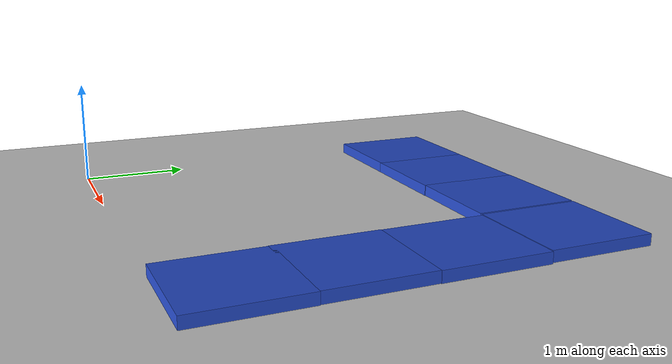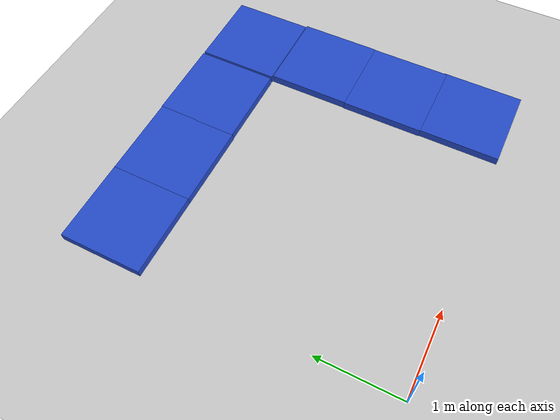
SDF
<sdf version="1.6">
 <world name="default">
  <model name="ground_plane">
   <static>1</static>
   <link name="link">
    <collision name="collision">
     <geometry><plane><normal>0 0 1</normal><size>100 100</size></plane></geometry>
     <surface><friction><ode><mu>100</mu><mu2>50</mu2></ode></friction></surface>
    </collision>
    <visual name="visual">
     <cast_shadows>0</cast_shadows>
     <geometry><plane><normal>0 0 1</normal><size>100 100</size></plane></geometry>
     <material>
      <script><uri>file://media/materials/scripts/gazebo.material</uri><name>Gazebo/Grey</name></script>
     </material>
    </visual>
   </link>
  </model>
  <model name="bloque_clone_14">
   <link name="unit_box::link">
    <inertial>
     <mass>0.765734</mass>
     <inertia>
      <ixx>0.0668092</ixx>
      <ixy>0</ixy>
      <ixz>0</ixz>
      <iyy>0.0668092</iyy>
      <iyz>0</iyz>
      <izz>0.127622</izz>
     </inertia>
    </inertial>
    <visual name="visual">
     <geometry><box><size>1 1 0.2</size></box></geometry>
     <material>
      <script><name>Gazebo/Blue</name><uri>file://media/materials/scripts/gazebo.material</uri></script>
      <shader type="pixel"><normal_map>__default__</normal_map></shader>
      <ambient>0.1 0.1 0.3 1</ambient>
      <diffuse>0.1 0.1 0.7 1</diffuse>
      <specular>0.01 0.01 0.01 1</specular>
      <emissive>0 0 0 1</emissive>
      <lighting>1</lighting>
     </material>
    </visual>
    <collision name="collision">
     <geometry><box><size>1 1 0.2</size></box></geometry>
     <surface>
      <friction>
       <ode><mu>1</mu><mu2>1</mu2><fdir1>0 0 0</fdir1><slip1>0</slip1><slip2>0</slip2></ode>
       <torsional>
        <coefficient>1</coefficient>
        <patch_radius>0</patch_radius>
        <surface_radius>0</surface_radius>
        <use_patch_radius>1</use_patch_radius>
        <ode><slip>0</slip></ode>
       </torsional>
      </friction>
      <bounce><restitution_coefficient>0</restitution_coefficient><threshold>1e+06</threshold></bounce>
      <contact>
       <collide_without_contact>0</collide_without_contact>
       <collide_without_contact_bitmask>1</collide_without_contact_bitmask>
       <collide_bitmask>1</collide_bitmask>
       <ode>
        <soft_cfm>0</soft_cfm>
        <soft_erp>0.2</soft_erp>
        <kp>1e+13</kp>
        <kd>1</kd>
        <max_vel>0.01</max_vel>
        <min_depth>0</min_depth>
       </ode>
       <bullet>
        <split_impulse>1</split_impulse>
        <split_impulse_penetration_threshold>-0.01</split_impulse_penetration_threshold>
        <soft_cfm>0</soft_cfm>
        <soft_erp>0.2</soft_erp>
        <kp>1e+13</kp>
        <kd>1</kd>
       </bullet>
      </contact>
     </surface>
    </collision>
   </link>
   <static>1</static>
   <pose>0.466689 3.49194 0 0 -0 0</pose>
  </model>
  <model name="bloque_clone_20">
   <link name="unit_box::link">
    <inertial>
     <mass>0.765734</mass>
     <inertia>
      <ixx>0.0668092</ixx>
      <ixy>0</ixy>
      <ixz>0</ixz>
      <iyy>0.0668092</iyy>
      <iyz>0</iyz>
      <izz>0.127622</izz>
     </inertia>
    </inertial>
    <visual name="visual">
     <geometry><box><size>1 1 0.2</size></box></geometry>
     <material>
      <script><name>Gazebo/Blue</name><uri>file://media/materials/scripts/gazebo.material</uri></script>
      <shader type="pixel"><normal_map>__default__</normal_map></shader>
      <ambient>0.1 0.1 0.3 1</ambient>
      <diffuse>0.1 0.1 0.7 1</diffuse>
      <specular>0.01 0.01 0.01 1</specular>
      <emissive>0 0 0 1</emissive>
      <lighting>1</lighting>
     </material>
    </visual>
    <collision name="collision">
     <geometry><box><size>1 1 0.2</size></box></geometry>
     <surface>
      <friction>
       <ode><mu>1</mu><mu2>1</mu2><fdir1>0 0 0</fdir1><slip1>0</slip1><slip2>0</slip2></ode>
       <torsional>
        <coefficient>1</coefficient>
        <patch_radius>0</patch_radius>
        <surface_radius>0</surface_radius>
        <use_patch_radius>1</use_patch_radius>
        <ode><slip>0</slip></ode>
       </torsional>
      </friction>
      <bounce><restitution_coefficient>0</restitution_coefficient><threshold>1e+06</threshold></bounce>
      <contact>
       <collide_without_contact>0</collide_without_contact>
       <collide_without_contact_bitmask>1</collide_without_contact_bitmask>
       <collide_bitmask>1</collide_bitmask>
       <ode>
        <soft_cfm>0</soft_cfm>
        <soft_erp>0.2</soft_erp>
        <kp>1e+13</kp>
        <kd>1</kd>
        <max_vel>0.01</max_vel>
        <min_depth>0</min_depth>
       </ode>
       <bullet>
        <split_impulse>1</split_impulse>
        <split_impulse_penetration_threshold>-0.01</split_impulse_penetration_threshold>
        <soft_cfm>0</soft_cfm>
        <soft_erp>0.2</soft_erp>
        <kp>1e+13</kp>
        <kd>1</kd>
       </bullet>
      </contact>
     </surface>
    </collision>
   </link>
   <static>1</static>
   <pose>1.44868 3.49065 0 0 -0 0</pose>
  </model>
  <model name="bloque_clone_21">
   <link name="unit_box::link">
    <inertial>
     <mass>0.765734</mass>
     <inertia>
      <ixx>0.0668092</ixx>
      <ixy>0</ixy>
      <ixz>0</ixz>
      <iyy>0.0668092</iyy>
      <iyz>0</iyz>
      <izz>0.127622</izz>
     </inertia>
    </inertial>
    <visual name="visual">
     <geometry><box><size>1 1 0.2</size></box></geometry>
     <material>
      <script><name>Gazebo/Blue</name><uri>file://media/materials/scripts/gazebo.material</uri></script>
      <shader type="pixel"><normal_map>__default__</normal_map></shader>
      <ambient>0.1 0.1 0.3 1</ambient>
      <diffuse>0.1 0.1 0.7 1</diffuse>
      <specular>0.01 0.01 0.01 1</specular>
      <emissive>0 0 0 1</emissive>
      <lighting>1</lighting>
     </material>
    </visual>
    <collision name="collision">
     <geometry><box><size>1 1 0.2</size></box></geometry>
     <surface>
      <friction>
       <ode><mu>1</mu><mu2>1</mu2><fdir1>0 0 0</fdir1><slip1>0</slip1><slip2>0</slip2></ode>
       <torsional>
        <coefficient>1</coefficient>
        <patch_radius>0</patch_radius>
        <surface_radius>0</surface_radius>
        <use_patch_radius>1</use_patch_radius>
        <ode><slip>0</slip></ode>
       </torsional>
      </friction>
      <bounce><restitution_coefficient>0</restitution_coefficient><threshold>1e+06</threshold></bounce>
      <contact>
       <collide_without_contact>0</collide_without_contact>
       <collide_without_contact_bitmask>1</collide_without_contact_bitmask>
       <collide_bitmask>1</collide_bitmask>
       <ode>
        <soft_cfm>0</soft_cfm>
        <soft_erp>0.2</soft_erp>
        <kp>1e+13</kp>
        <kd>1</kd>
        <max_vel>0.01</max_vel>
        <min_depth>0</min_depth>
       </ode>
       <bullet>
        <split_impulse>1</split_impulse>
        <split_impulse_penetration_threshold>-0.01</split_impulse_penetration_threshold>
        <soft_cfm>0</soft_cfm>
        <soft_erp>0.2</soft_erp>
        <kp>1e+13</kp>
        <kd>1</kd>
       </bullet>
      </contact>
     </surface>
    </collision>
   </link>
   <static>1</static>
   <pose>2.43998 3.49632 0 0 -0 0</pose>
  </model>
  <model name="bloque_clone_22">
   <link name="unit_box::link">
    <inertial>
     <mass>0.765734</mass>
     <inertia>
      <ixx>0.0668092</ixx>
      <ixy>0</ixy>
      <ixz>0</ixz>
      <iyy>0.0668092</iyy>
      <iyz>0</iyz>
      <izz>0.127622</izz>
     </inertia>
    </inertial>
    <visual name="visual">
     <geometry><box><size>1 1 0.2</size></box></geometry>
     <material>
      <script><name>Gazebo/Blue</name><uri>file://media/materials/scripts/gazebo.material</uri></script>
      <shader type="pixel"><normal_map>__default__</normal_map></shader>
      <ambient>0.1 0.1 0.3 1</ambient>
      <diffuse>0.1 0.1 0.7 1</diffuse>
      <specular>0.01 0.01 0.01 1</specular>
      <emissive>0 0 0 1</emissive>
      <lighting>1</lighting>
     </material>
    </visual>
    <collision name="collision">
     <geometry><box><size>1 1 0.2</size></box></geometry>
     <surface>
      <friction>
       <ode><mu>1</mu><mu2>1</mu2><fdir1>0 0 0</fdir1><slip1>0</slip1><slip2>0</slip2></ode>
       <torsional>
        <coefficient>1</coefficient>
        <patch_radius>0</patch_radius>
        <surface_radius>0</surface_radius>
        <use_patch_radius>1</use_patch_radius>
        <ode><slip>0</slip></ode>
       </torsional>
      </friction>
      <bounce><restitution_coefficient>0</restitution_coefficient><threshold>1e+06</threshold></bounce>
      <contact>
       <collide_without_contact>0</collide_without_contact>
       <collide_without_contact_bitmask>1</collide_without_contact_bitmask>
       <collide_bitmask>1</collide_bitmask>
       <ode>
        <soft_cfm>0</soft_cfm>
        <soft_erp>0.2</soft_erp>
        <kp>1e+13</kp>
        <kd>1</kd>
        <max_vel>0.01</max_vel>
        <min_depth>0</min_depth>
       </ode>
       <bullet>
        <split_impulse>1</split_impulse>
        <split_impulse_penetration_threshold>-0.01</split_impulse_penetration_threshold>
        <soft_cfm>0</soft_cfm>
        <soft_erp>0.2</soft_erp>
        <kp>1e+13</kp>
        <kd>1</kd>
       </bullet>
      </contact>
     </surface>
    </collision>
   </link>
   <static>1</static>
   <pose>3.48115 1.48827 0 0 -0 0</pose>
  </model>
  <model name="bloque_clone_23">
   <link name="unit_box::link">
    <inertial>
     <mass>0.765734</mass>
     <inertia>
      <ixx>0.0668092</ixx>
      <ixy>0</ixy>
      <ixz>0</ixz>
      <iyy>0.0668092</iyy>
      <iyz>0</iyz>
      <izz>0.127622</izz>
     </inertia>
    </inertial>
    <visual name="visual">
     <geometry><box><size>1 1 0.2</size></box></geometry>
     <material>
      <script><name>Gazebo/Blue</name><uri>file://media/materials/scripts/gazebo.material</uri></script>
      <shader type="pixel"><normal_map>__default__</normal_map></shader>
      <ambient>0.1 0.1 0.3 1</ambient>
      <diffuse>0.1 0.1 0.7 1</diffuse>
      <specular>0.01 0.01 0.01 1</specular>
      <emissive>0 0 0 1</emissive>
      <lighting>1</lighting>
     </material>
    </visual>
    <collision name="collision">
     <geometry><box><size>1 1 0.2</size></box></geometry>
     <surface>
      <friction>
       <ode><mu>1</mu><mu2>1</mu2><fdir1>0 0 0</fdir1><slip1>0</slip1><slip2>0</slip2></ode>
       <torsional>
        <coefficient>1</coefficient>
        <patch_radius>0</patch_radius>
        <surface_radius>0</surface_radius>
        <use_patch_radius>1</use_patch_radius>
        <ode><slip>0</slip></ode>
       </torsional>
      </friction>
      <bounce><restitution_coefficient>0</restitution_coefficient><threshold>1e+06</threshold></bounce>
      <contact>
       <collide_without_contact>0</collide_without_contact>
       <collide_without_contact_bitmask>1</collide_without_contact_bitmask>
       <collide_bitmask>1</collide_bitmask>
       <ode>
        <soft_cfm>0</soft_cfm>
        <soft_erp>0.2</soft_erp>
        <kp>1e+13</kp>
        <kd>1</kd>
        <max_vel>0.01</max_vel>
        <min_depth>0</min_depth>
       </ode>
       <bullet>
        <split_impulse>1</split_impulse>
        <split_impulse_penetration_threshold>-0.01</split_impulse_penetration_threshold>
        <soft_cfm>0</soft_cfm>
        <soft_erp>0.2</soft_erp>
        <kp>1e+13</kp>
        <kd>1</kd>
       </bullet>
      </contact>
     </surface>
    </collision>
   </link>
   <static>1</static>
   <pose>3.48877 0.520581 0 0 -0 0</pose>
  </model>
  <model name="bloque_clone_24">
   <link name="unit_box::link">
    <inertial>
     <mass>0.765734</mass>
     <inertia>
      <ixx>0.0668092</ixx>
      <ixy>0</ixy>
      <ixz>0</ixz>
      <iyy>0.0668092</iyy>
      <iyz>0</iyz>
      <izz>0.127622</izz>
     </inertia>
    </inertial>
    <visual name="visual">
     <geometry><box><size>1 1 0.2</size></box></geometry>
     <material>
      <script><name>Gazebo/Blue</name><uri>file://media/materials/scripts/gazebo.material</uri></script>
      <shader type="pixel"><normal_map>__default__</normal_map></shader>
      <ambient>0.1 0.1 0.3 1</ambient>
      <diffuse>0.1 0.1 0.7 1</diffuse>
      <specular>0.01 0.01 0.01 1</specular>
      <emissive>0 0 0 1</emissive>
      <lighting>1</lighting>
     </material>
    </visual>
    <collision name="collision">
     <geometry><box><size>1 1 0.2</size></box></geometry>
     <surface>
      <friction>
       <ode><mu>1</mu><mu2>1</mu2><fdir1>0 0 0</fdir1><slip1>0</slip1><slip2>0</slip2></ode>
       <torsional>
        <coefficient>1</coefficient>
        <patch_radius>0</patch_radius>
        <surface_radius>0</surface_radius>
        <use_patch_radius>1</use_patch_radius>
        <ode><slip>0</slip></ode>
       </torsional>
      </friction>
      <bounce><restitution_coefficient>0</restitution_coefficient><threshold>1e+06</threshold></bounce>
      <contact>
       <collide_without_contact>0</collide_without_contact>
       <collide_without_contact_bitmask>1</collide_without_contact_bitmask>
       <collide_bitmask>1</collide_bitmask>
       <ode>
        <soft_cfm>0</soft_cfm>
        <soft_erp>0.2</soft_erp>
        <kp>1e+13</kp>
        <kd>1</kd>
        <max_vel>0.01</max_vel>
        <min_depth>0</min_depth>
       </ode>
       <bullet>
        <split_impulse>1</split_impulse>
        <split_impulse_penetration_threshold>-0.01</split_impulse_penetration_threshold>
        <soft_cfm>0</soft_cfm>
        <soft_erp>0.2</soft_erp>
        <kp>1e+13</kp>
        <kd>1</kd>
       </bullet>
      </contact>
     </surface>
    </collision>
   </link>
   <static>1</static>
   <pose>3.48769 2.48606 0 0 -0 0</pose>
  </model>
  <model name="bloque_clone_25">
   <link name="unit_box::link">
    <inertial>
     <mass>0.765734</mass>
     <inertia>
      <ixx>0.0668092</ixx>
      <ixy>0</ixy>
      <ixz>0</ixz>
      <iyy>0.0668092</iyy>
      <iyz>0</iyz>
      <izz>0.127622</izz>
     </inertia>
    </inertial>
    <visual name="visual">
     <geometry><box><size>1 1 0.2</size></box></geometry>
     <material>
      <script><name>Gazebo/Blue</name><uri>file://media/materials/scripts/gazebo.material</uri></script>
      <shader type="pixel"><normal_map>__default__</normal_map></shader>
      <ambient>0.1 0.1 0.3 1</ambient>
      <diffuse>0.1 0.1 0.7 1</diffuse>
      <specular>0.01 0.01 0.01 1</specular>
      <emissive>0 0 0 1</emissive>
      <lighting>1</lighting>
     </material>
    </visual>
    <collision name="collision">
     <geometry><box><size>1 1 0.2</size></box></geometry>
     <surface>
      <friction>
       <ode><mu>1</mu><mu2>1</mu2><fdir1>0 0 0</fdir1><slip1>0</slip1><slip2>0</slip2></ode>
       <torsional>
        <coefficient>1</coefficient>
        <patch_radius>0</patch_radius>
        <surface_radius>0</surface_radius>
        <use_patch_radius>1</use_patch_radius>
        <ode><slip>0</slip></ode>
       </torsional>
      </friction>
      <bounce><restitution_coefficient>0</restitution_coefficient><threshold>1e+06</threshold></bounce>
      <contact>
       <collide_without_contact>0</collide_without_contact>
       <collide_without_contact_bitmask>1</collide_without_contact_bitmask>
       <collide_bitmask>1</collide_bitmask>
       <ode>
        <soft_cfm>0</soft_cfm>
        <soft_erp>0.2</soft_erp>
        <kp>1e+13</kp>
        <kd>1</kd>
        <max_vel>0.01</max_vel>
        <min_depth>0</min_depth>
       </ode>
       <bullet>
        <split_impulse>1</split_impulse>
        <split_impulse_penetration_threshold>-0.01</split_impulse_penetration_threshold>
        <soft_cfm>0</soft_cfm>
        <soft_erp>0.2</soft_erp>
        <kp>1e+13</kp>
        <kd>1</kd>
       </bullet>
      </contact>
     </surface>
    </collision>
   </link>
   <static>1</static>
   <pose>3.46587 3.49379 0 0 -0 0</pose>
  </model>
 </world>
</sdf>
